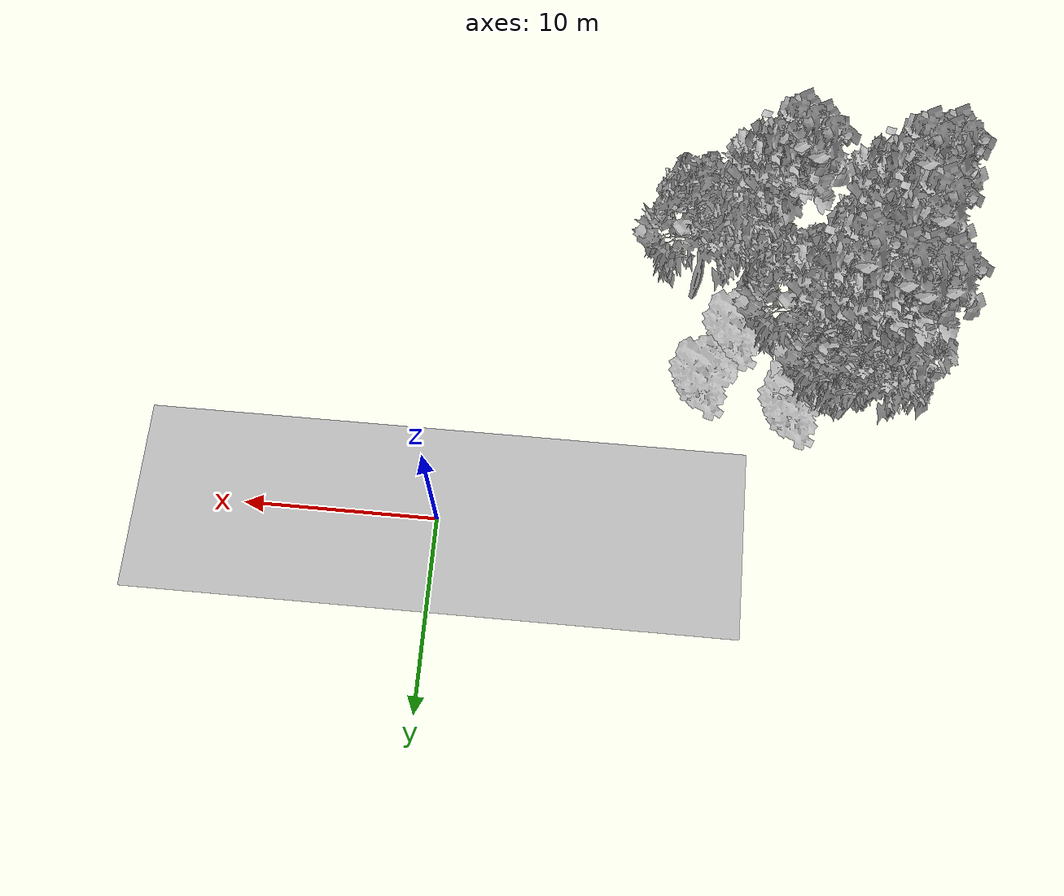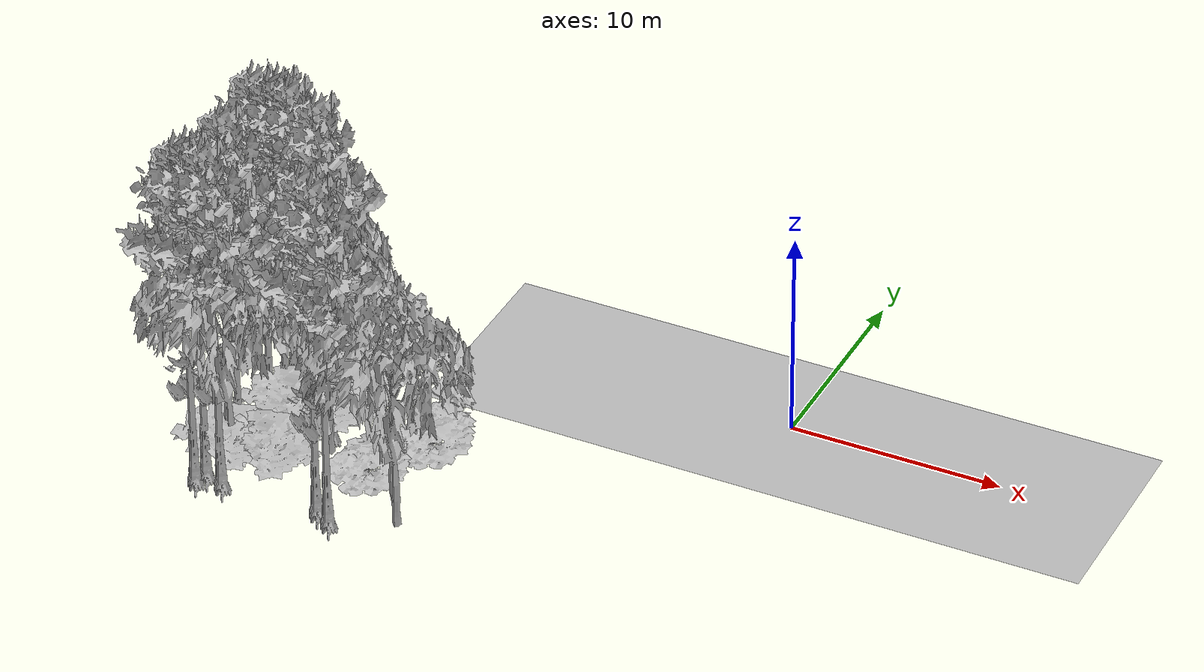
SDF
<sdf version="1.7">
 <world name="default">
  <model name="ground_plane">
   <static>1</static>
   <link name="link">
    <collision name="collision">
     <pose>-50 0 0 0 -0 0</pose>
     <geometry><plane><normal>0 0 1</normal><size>100 100</size></plane></geometry>
     <surface><contact><ode><min_depth>0.01</min_depth><max_vel>0</max_vel></ode></contact></surface>
    </collision>
    <visual name="grass">
     <cast_shadows>0</cast_shadows>
     <geometry>
      <mesh>
       <scale>0.5814285714285714 0.18142857142857144 0.1</scale>
       <uri>file://grass_plane/meshes/grass_plane.dae</uri>
      </mesh>
     </geometry>
    </visual>
   </link>
  </model>
  <model name="Tree 17">
   <static>1</static>
   <pose>-21.976754670032733 -14.721176243246461 0 1.57079 -0 0</pose>
   <link name="link">
    <collision name="collision">
     <geometry><mesh><scale>3.5 5 3.5</scale><uri>model://tree_9/meshes/tree_9.obj</uri></mesh></geometry>
    </collision>
    <visual name="visual">
     <geometry><mesh><scale>3.5 5 3.5</scale><uri>model://tree_9/meshes/tree_9.obj</uri></mesh></geometry>
    </visual>
   </link>
  </model>
  <model name="Tree 35">
   <static>1</static>
   <pose>-20.757345983520487 -14.519354435899087 0 1.57079 -0 0</pose>
   <link name="link">
    <collision name="collision">
     <geometry><mesh><scale>3.5 5 3.5</scale><uri>model://tree_9/meshes/tree_9.obj</uri></mesh></geometry>
    </collision>
    <visual name="visual">
     <geometry><mesh><scale>3.5 5 3.5</scale><uri>model://tree_9/meshes/tree_9.obj</uri></mesh></geometry>
    </visual>
   </link>
  </model>
  <model name="Tree 63">
   <static>1</static>
   <pose>-19.53062161760717 -8.112859638413173 0 1.57079 -0 0</pose>
   <link name="link">
    <collision name="collision">
     <geometry><mesh><scale>3.5 5 3.5</scale><uri>model://tree_2/meshes/tree_2.obj</uri></mesh></geometry>
    </collision>
    <visual name="visual">
     <geometry><mesh><scale>3.5 5 3.5</scale><uri>model://tree_2/meshes/tree_2.obj</uri></mesh></geometry>
    </visual>
   </link>
  </model>
  <model name="Tree 67">
   <static>1</static>
   <pose>-17.628979048486737 -10.496017884582969 0 1.57079 -0 0</pose>
   <link name="link">
    <collision name="collision">
     <geometry><mesh><scale>3.5 5 3.5</scale><uri>model://tree_2/meshes/tree_2.obj</uri></mesh></geometry>
    </collision>
    <visual name="visual">
     <geometry><mesh><scale>3.5 5 3.5</scale><uri>model://tree_2/meshes/tree_2.obj</uri></mesh></geometry>
    </visual>
   </link>
  </model>
  <model name="Tree 90">
   <static>1</static>
   <pose>-20.60768814464203 -7.546389355138992 0 1.57079 -0 0</pose>
   <link name="link">
    <collision name="collision">
     <geometry><mesh><scale>3.5 5 3.5</scale><uri>model://tree_2/meshes/tree_2.obj</uri></mesh></geometry>
    </collision>
    <visual name="visual">
     <geometry><mesh><scale>3.5 5 3.5</scale><uri>model://tree_2/meshes/tree_2.obj</uri></mesh></geometry>
    </visual>
   </link>
  </model>
  <model name="Tree 126">
   <static>1</static>
   <pose>-16.075942841719588 -14.425159163887413 0 1.57079 -0 0</pose>
   <link name="link">
    <collision name="collision">
     <geometry><mesh><scale>3.5 5 3.5</scale><uri>model://tree_9/meshes/tree_9.obj</uri></mesh></geometry>
    </collision>
    <visual name="visual">
     <geometry><mesh><scale>3.5 5 3.5</scale><uri>model://tree_9/meshes/tree_9.obj</uri></mesh></geometry>
    </visual>
   </link>
  </model>
  <model name="Tree 164">
   <static>1</static>
   <pose>-14.961017270363634 -11.738567511511182 0 1.57079 -0 0</pose>
   <link name="link">
    <collision name="collision">
     <geometry><mesh><scale>4 2.5 4</scale><uri>model://tree_1/meshes/tree_1.obj</uri></mesh></geometry>
    </collision>
    <visual name="visual">
     <geometry><mesh><scale>4 2.5 4</scale><uri>model://tree_1/meshes/tree_1.obj</uri></mesh></geometry>
    </visual>
   </link>
  </model>
  <model name="Tree 175">
   <static>1</static>
   <pose>-19.803428143092813 -8.579964323294078 0 1.57079 -0 0</pose>
   <link name="link">
    <collision name="collision">
     <geometry><mesh><scale>3.5 5 3.5</scale><uri>model://tree_9/meshes/tree_9.obj</uri></mesh></geometry>
    </collision>
    <visual name="visual">
     <geometry><mesh><scale>3.5 5 3.5</scale><uri>model://tree_9/meshes/tree_9.obj</uri></mesh></geometry>
    </visual>
   </link>
  </model>
  <model name="Tree 183">
   <static>1</static>
   <pose>-20.593565399929027 -8.134208529808827 0 1.57079 -0 0</pose>
   <link name="link">
    <collision name="collision">
     <geometry><mesh><scale>3.5 5 3.5</scale><uri>model://tree_9/meshes/tree_9.obj</uri></mesh></geometry>
    </collision>
    <visual name="visual">
     <geometry><mesh><scale>3.5 5 3.5</scale><uri>model://tree_9/meshes/tree_9.obj</uri></mesh></geometry>
    </visual>
   </link>
  </model>
  <model name="Tree 277">
   <static>1</static>
   <pose>-15.256788433914181 -14.907477472027775 0 1.57079 -0 0</pose>
   <link name="link">
    <collision name="collision">
     <geometry><mesh><scale>3.5 5 3.5</scale><uri>model://tree_9/meshes/tree_9.obj</uri></mesh></geometry>
    </collision>
    <visual name="visual">
     <geometry><mesh><scale>3.5 5 3.5</scale><uri>model://tree_9/meshes/tree_9.obj</uri></mesh></geometry>
    </visual>
   </link>
  </model>
  <model name="Tree 300">
   <static>1</static>
   <pose>-18.05801055993466 -7.6042702223353364 0 1.57079 -0 0</pose>
   <link name="link">
    <collision name="collision">
     <geometry><mesh><scale>4 2.5 4</scale><uri>model://tree_1/meshes/tree_1.obj</uri></mesh></geometry>
    </collision>
    <visual name="visual">
     <geometry><mesh><scale>4 2.5 4</scale><uri>model://tree_1/meshes/tree_1.obj</uri></mesh></geometry>
    </visual>
   </link>
  </model>
  <model name="Tree 320">
   <static>1</static>
   <pose>-19.538322450734505 -12.90451196116919 0 1.57079 -0 0</pose>
   <link name="link">
    <collision name="collision">
     <geometry><mesh><scale>3 2 3</scale><uri>model://tree_3/meshes/tree_3.obj</uri></mesh></geometry>
    </collision>
    <visual name="visual">
     <geometry><mesh><scale>3 2 3</scale><uri>model://tree_3/meshes/tree_3.obj</uri></mesh></geometry>
    </visual>
   </link>
  </model>
  <model name="Tree 339">
   <static>1</static>
   <pose>-21.377300214493285 -11.785104850010308 0 1.57079 -0 0</pose>
   <link name="link">
    <collision name="collision">
     <geometry><mesh><scale>3.5 5 3.5</scale><uri>model://tree_9/meshes/tree_9.obj</uri></mesh></geometry>
    </collision>
    <visual name="visual">
     <geometry><mesh><scale>3.5 5 3.5</scale><uri>model://tree_9/meshes/tree_9.obj</uri></mesh></geometry>
    </visual>
   </link>
  </model>
  <model name="Tree 355">
   <static>1</static>
   <pose>-21.725723878131344 -14.156254893840444 0 1.57079 -0 0</pose>
   <link name="link">
    <collision name="collision">
     <geometry><mesh><scale>3.5 5 3.5</scale><uri>model://tree_9/meshes/tree_9.obj</uri></mesh></geometry>
    </collision>
    <visual name="visual">
     <geometry><mesh><scale>3.5 5 3.5</scale><uri>model://tree_9/meshes/tree_9.obj</uri></mesh></geometry>
    </visual>
   </link>
  </model>
  <model name="Tree 365">
   <static>1</static>
   <pose>-20.789102936032307 -8.56584477364606 0 1.57079 -0 0</pose>
   <link name="link">
    <collision name="collision">
     <geometry><mesh><scale>3.5 5 3.5</scale><uri>model://tree_9/meshes/tree_9.obj</uri></mesh></geometry>
    </collision>
    <visual name="visual">
     <geometry><mesh><scale>3.5 5 3.5</scale><uri>model://tree_9/meshes/tree_9.obj</uri></mesh></geometry>
    </visual>
   </link>
  </model>
  <model name="Tree 384">
   <static>1</static>
   <pose>-21.387676349008558 -13.10228982602316 0 1.57079 -0 0</pose>
   <link name="link">
    <collision name="collision">
     <geometry><mesh><scale>3 2 3</scale><uri>model://tree_3/meshes/tree_3.obj</uri></mesh></geometry>
    </collision>
    <visual name="visual">
     <geometry><mesh><scale>3 2 3</scale><uri>model://tree_3/meshes/tree_3.obj</uri></mesh></geometry>
    </visual>
   </link>
  </model>
  <model name="Tree 386">
   <static>1</static>
   <pose>-18.572300456924307 -8.649479777055268 0 1.57079 -0 0</pose>
   <link name="link">
    <collision name="collision">
     <geometry><mesh><scale>3 2 3</scale><uri>model://tree_3/meshes/tree_3.obj</uri></mesh></geometry>
    </collision>
    <visual name="visual">
     <geometry><mesh><scale>3 2 3</scale><uri>model://tree_3/meshes/tree_3.obj</uri></mesh></geometry>
    </visual>
   </link>
  </model>
  <model name="Tree 387">
   <static>1</static>
   <pose>-21.691139979544147 -8.42770263436783 0 1.57079 -0 0</pose>
   <link name="link">
    <collision name="collision">
     <geometry><mesh><scale>3.5 5 3.5</scale><uri>model://tree_9/meshes/tree_9.obj</uri></mesh></geometry>
    </collision>
    <visual name="visual">
     <geometry><mesh><scale>3.5 5 3.5</scale><uri>model://tree_9/meshes/tree_9.obj</uri></mesh></geometry>
    </visual>
   </link>
  </model>
  <model name="Tree 414">
   <static>1</static>
   <pose>-13.333645577998475 -8.817282465282002 0 1.57079 -0 0</pose>
   <link name="link">
    <collision name="collision">
     <geometry><mesh><scale>4 2.5 4</scale><uri>model://tree_1/meshes/tree_1.obj</uri></mesh></geometry>
    </collision>
    <visual name="visual">
     <geometry><mesh><scale>4 2.5 4</scale><uri>model://tree_1/meshes/tree_1.obj</uri></mesh></geometry>
    </visual>
   </link>
  </model>
  <model name="Tree 428">
   <static>1</static>
   <pose>-21.034846935298468 -13.205776103107828 0 1.57079 -0 0</pose>
   <link name="link">
    <collision name="collision">
     <geometry><mesh><scale>3.5 5 3.5</scale><uri>model://tree_2/meshes/tree_2.obj</uri></mesh></geometry>
    </collision>
    <visual name="visual">
     <geometry><mesh><scale>3.5 5 3.5</scale><uri>model://tree_2/meshes/tree_2.obj</uri></mesh></geometry>
    </visual>
   </link>
  </model>
  <model name="Tree 437">
   <static>1</static>
   <pose>-20.107298986988212 -9.473150240457183 0 1.57079 -0 0</pose>
   <link name="link">
    <collision name="collision">
     <geometry><mesh><scale>3 2 3</scale><uri>model://tree_3/meshes/tree_3.obj</uri></mesh></geometry>
    </collision>
    <visual name="visual">
     <geometry><mesh><scale>3 2 3</scale><uri>model://tree_3/meshes/tree_3.obj</uri></mesh></geometry>
    </visual>
   </link>
  </model>
  <model name="Tree 510">
   <static>1</static>
   <pose>-18.12657253469715 -9.291861911501496 0 1.57079 -0 0</pose>
   <link name="link">
    <collision name="collision">
     <geometry><mesh><scale>3.5 5 3.5</scale><uri>model://tree_9/meshes/tree_9.obj</uri></mesh></geometry>
    </collision>
    <visual name="visual">
     <geometry><mesh><scale>3.5 5 3.5</scale><uri>model://tree_9/meshes/tree_9.obj</uri></mesh></geometry>
    </visual>
   </link>
  </model>
  <model name="Tree 536">
   <static>1</static>
   <pose>-12.53223588051776 -13.905254231017555 0 1.57079 -0 0</pose>
   <link name="link">
    <collision name="collision">
     <geometry><mesh><scale>3.5 5 3.5</scale><uri>model://tree_2/meshes/tree_2.obj</uri></mesh></geometry>
    </collision>
    <visual name="visual">
     <geometry><mesh><scale>3.5 5 3.5</scale><uri>model://tree_2/meshes/tree_2.obj</uri></mesh></geometry>
    </visual>
   </link>
  </model>
 </world>
</sdf>
